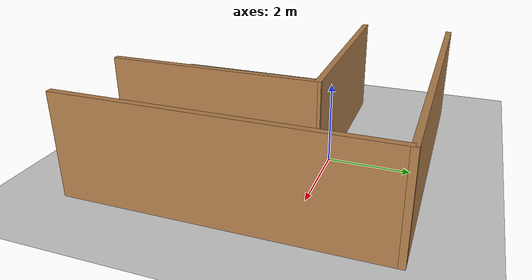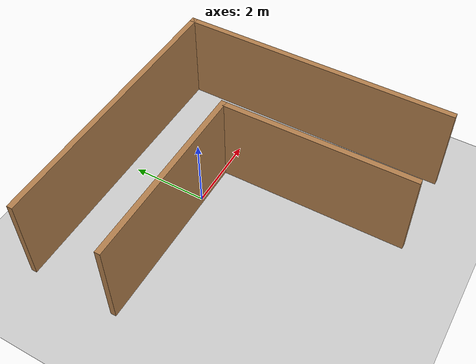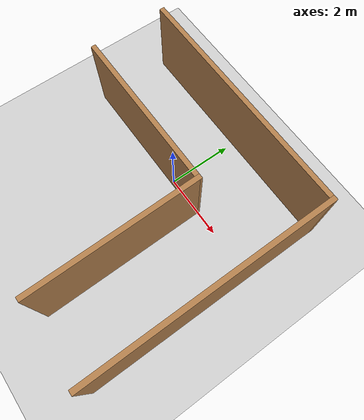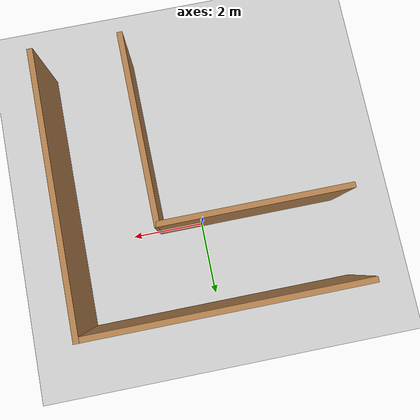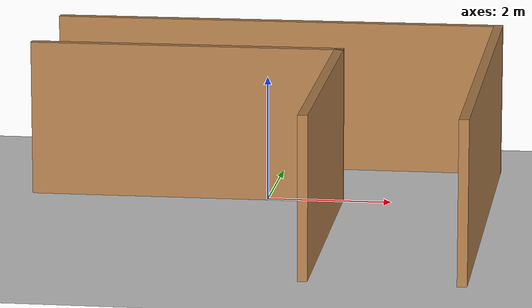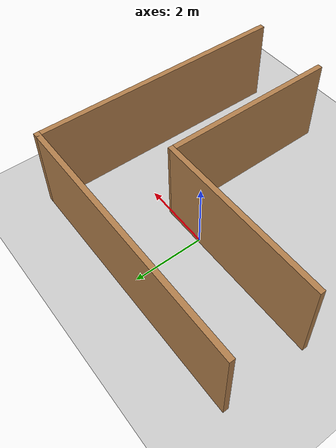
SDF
<sdf version="1.7">
 <world name="default">
  <plugin name="gazebo_ros_state" filename="libgazebo_ros_state.so">
   <ros>
    <namespace>/plug</namespace>
    <argument>model_states:=model_states_plug</argument>
    <argument>link_states:=link_states_plug</argument>
   </ros>
   <update_rate>100.0</update_rate>
  </plugin>
  <plugin name="disable_physics" filename="libdisable_physics.so"/>
  <light name="sun" type="directional">
   <pose>0 0 10 0 -0 0</pose>
   <diffuse>0.8 0.8 0.8 1</diffuse>
   <specular>0.2 0.2 0.2 1</specular>
   <attenuation>
    <range>1000</range>
    <constant>0.9</constant>
    <linear>0.01</linear>
    <quadratic>0.001</quadratic>
   </attenuation>
   <direction>-0.5 0.1 -0.9</direction>
   <spot><inner_angle>0</inner_angle><outer_angle>0</outer_angle><falloff>0</falloff></spot>
  </light>
  <model name="ground_plane">
   <static>1</static>
   <link name="link">
    <collision name="collision">
     <geometry><plane><normal>0 0 1</normal><size>100 100</size></plane></geometry>
     <surface>
      <contact><collide_bitmask>65535</collide_bitmask></contact>
      <friction><ode><mu>100</mu><mu2>50</mu2></ode></friction>
     </surface>
    </collision>
    <visual name="visual">
     <cast_shadows>0</cast_shadows>
     <geometry><plane><normal>0 0 1</normal><size>100 100</size></plane></geometry>
     <material>
      <script><uri>file://media/materials/scripts/gazebo.material</uri><name>Gazebo/Grey</name></script>
     </material>
    </visual>
   </link>
  </model>
  <gravity>0 0 -9.8</gravity>
  <magnetic_field>6e-06 2.3e-05 -4.2e-05</magnetic_field>
  <atmosphere type="adiabatic"/>
  <physics type="ode">
   <max_step_size>0.01</max_step_size>
   <real_time_factor>1</real_time_factor>
   <real_time_update_rate>100</real_time_update_rate>
  </physics>
  <scene><ambient>0.4 0.4 0.4 1</ambient><background>0.7 0.7 0.7 1</background><shadows>1</shadows></scene>
  <audio><device>default</device></audio>
  <spherical_coordinates>
   <surface_model>EARTH_WGS84</surface_model>
   <latitude_deg>0</latitude_deg>
   <longitude_deg>0</longitude_deg>
   <elevation>0</elevation>
   <heading_deg>0</heading_deg>
  </spherical_coordinates>
  <model name="hallway_corner">
   <pose>-0.119948 -0.045496 0 0 -0 0</pose>
   <link name="Wall_0">
    <collision name="Wall_0_Collision">
     <geometry><box><size>5.16016 0.15 2.5</size></box></geometry>
     <pose>0 0 1.25 0 -0 0</pose>
    </collision>
    <visual name="Wall_0_Visual">
     <pose>0 0 1.25 0 -0 0</pose>
     <geometry><box><size>5.16016 0.15 2.5</size></box></geometry>
     <material>
      <script><uri>file://media/materials/scripts/gazebo.material</uri><name>Gazebo/Wood</name></script>
      <ambient>1 1 1 1</ambient>
     </material>
     <meta><layer>0</layer></meta>
    </visual>
    <pose>1.29008 -2.4722 0 0 -0 -1.56281</pose>
   </link>
   <link name="Wall_2">
    <collision name="Wall_2_Collision">
     <geometry><box><size>7.5 0.15 2.5</size></box></geometry>
     <pose>0 0 1.25 0 -0 0</pose>
    </collision>
    <visual name="Wall_2_Visual">
     <pose>0 0 1.25 0 -0 0</pose>
     <geometry><box><size>7.5 0.15 2.5</size></box></geometry>
     <material>
      <script><uri>file://media/materials/scripts/gazebo.material</uri><name>Gazebo/Wood</name></script>
      <ambient>1 1 1 1</ambient>
     </material>
     <meta><layer>0</layer></meta>
    </visual>
    <pose>3.66008 -1.3022 0 0 -0 1.5708</pose>
   </link>
   <link name="Wall_3">
    <collision name="Wall_3_Collision">
     <geometry><box><size>7.46 0.15 2.5</size></box></geometry>
     <pose>0 0 1.25 0 -0 0</pose>
    </collision>
    <visual name="Wall_3_Visual">
     <pose>0 0 1.25 0 -0 0</pose>
     <geometry><box><size>7.46 0.15 2.5</size></box></geometry>
     <material>
      <script><uri>file://media/materials/scripts/gazebo.material</uri><name>Gazebo/Wood</name></script>
      <ambient>1 1 1 1</ambient>
     </material>
     <meta><layer>0</layer></meta>
    </visual>
    <pose>0.005076 2.3728 0 0 -0 3.14159</pose>
   </link>
   <link name="Wall_5">
    <collision name="Wall_5_Collision">
     <geometry><box><size>5.08001 0.15 2.5</size></box></geometry>
     <pose>0 0 1.25 0 -0 0</pose>
    </collision>
    <visual name="Wall_5_Visual">
     <pose>0 0 1.25 0 -0 0</pose>
     <geometry><box><size>5.08001 0.15 2.5</size></box></geometry>
     <material>
      <script><uri>file://media/materials/scripts/gazebo.material</uri><name>Gazebo/Wood</name></script>
      <ambient>1 1 1 1</ambient>
     </material>
     <meta><layer>0</layer></meta>
    </visual>
    <pose>-1.19492 0.027798 0 0 -0 0.002028</pose>
   </link>
   <static>1</static>
  </model>
 </world>
</sdf>
